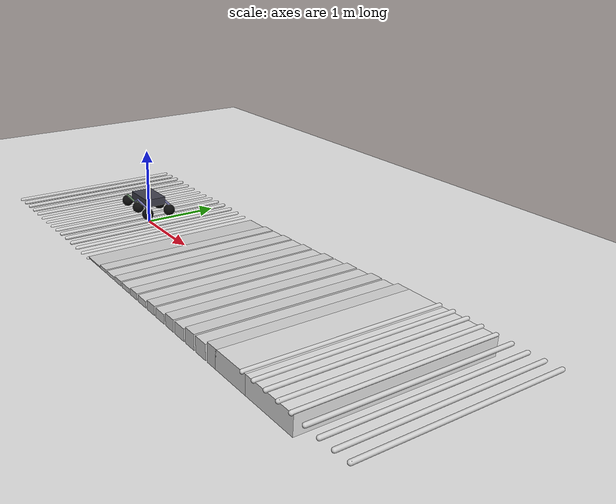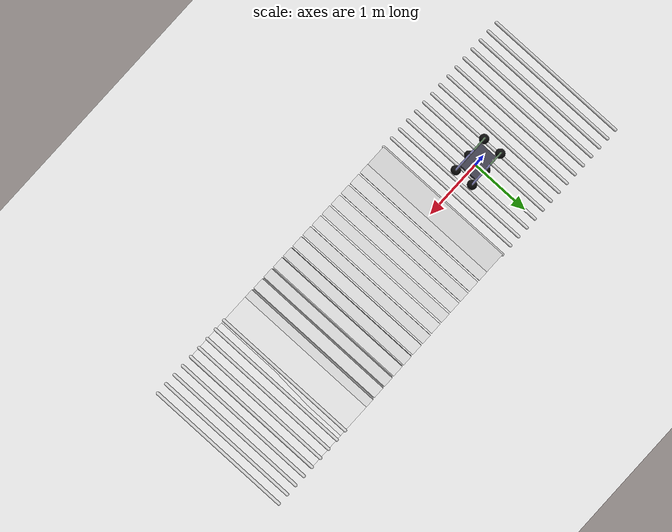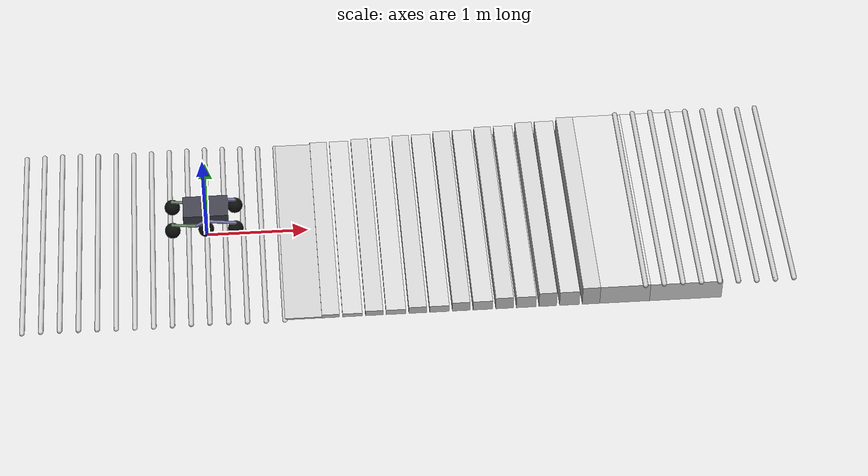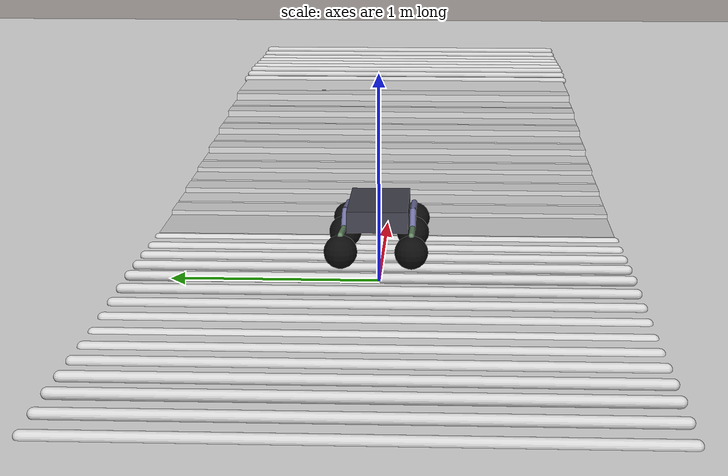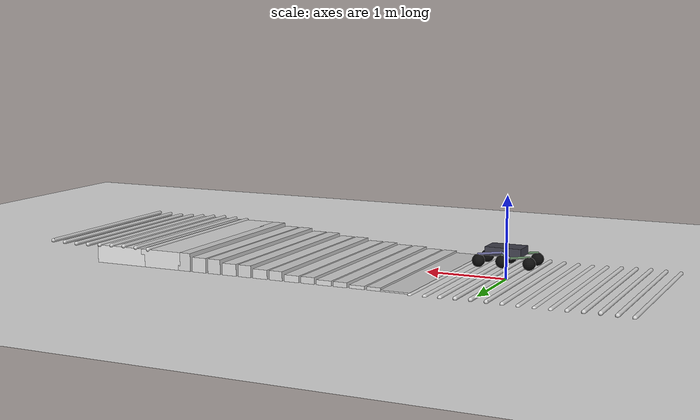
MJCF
<mujoco model="scene_stairs_logs">
  <compiler angle="degree" inertiafromgeom="true"/>
  <option timestep="0.002" gravity="0 0 -9.81"/>

  <default>
    <geom contype="1" conaffinity="1"/>
  </default>

  <include file="rover.xml"/>

  <worldbody>
    <geom name="floor" type="plane" size="45 45 0.1" pos="0 0 0"
          contype="1" conaffinity="1"
          friction="1.40 0.01 0.0001"
          rgba="0.88 0.88 0.88 1"/>

    <body name="sine_before" pos="0 0 0">
      <geom type="capsule" fromto="-1.80 -1.2  0.000  -1.80  1.2  0.000" size="0.025" rgba="0.82 0.82 0.82 1"
            contype="1" conaffinity="1" friction="0.6 0.005 0.0001"/>
      <geom type="capsule" fromto="-1.62 -1.2  0.007  -1.62  1.2  0.007" size="0.025" rgba="0.82 0.82 0.82 1"
            contype="1" conaffinity="1" friction="0.6 0.005 0.0001"/>
      <geom type="capsule" fromto="-1.44 -1.2  0.012  -1.44  1.2  0.012" size="0.025" rgba="0.82 0.82 0.82 1"
            contype="1" conaffinity="1" friction="0.6 0.005 0.0001"/>
      <geom type="capsule" fromto="-1.26 -1.2  0.007  -1.26  1.2  0.007" size="0.025" rgba="0.82 0.82 0.82 1"
            contype="1" conaffinity="1" friction="0.6 0.005 0.0001"/>
      <geom type="capsule" fromto="-1.08 -1.2  0.000  -1.08  1.2  0.000" size="0.025" rgba="0.82 0.82 0.82 1"
            contype="1" conaffinity="1" friction="0.6 0.005 0.0001"/>
      <geom type="capsule" fromto="-0.90 -1.2 -0.007  -0.90  1.2 -0.007" size="0.025" rgba="0.82 0.82 0.82 1"
            contype="1" conaffinity="1" friction="0.6 0.005 0.0001"/>
      <geom type="capsule" fromto="-0.72 -1.2 -0.012  -0.72  1.2 -0.012" size="0.025" rgba="0.82 0.82 0.82 1"
            contype="1" conaffinity="1" friction="0.6 0.005 0.0001"/>
      <geom type="capsule" fromto="-0.54 -1.2 -0.007  -0.54  1.2 -0.007" size="0.025" rgba="0.82 0.82 0.82 1"
            contype="1" conaffinity="1" friction="0.6 0.005 0.0001"/>
      <geom type="capsule" fromto="-0.36 -1.2  0.000  -0.36  1.2  0.000" size="0.025" rgba="0.82 0.82 0.82 1"
            contype="1" conaffinity="1" friction="0.6 0.005 0.0001"/>
      <geom type="capsule" fromto="-0.18 -1.2  0.007  -0.18  1.2  0.007" size="0.025" rgba="0.82 0.82 0.82 1"
            contype="1" conaffinity="1" friction="0.6 0.005 0.0001"/>
      <geom type="capsule" fromto=" 0.00 -1.2  0.012   0.00  1.2  0.012" size="0.025" rgba="0.82 0.82 0.82 1"
            contype="1" conaffinity="1" friction="0.6 0.005 0.0001"/>
      <geom type="capsule" fromto=" 0.18 -1.2  0.007   0.18  1.2  0.007" size="0.025" rgba="0.82 0.82 0.82 1"
            contype="1" conaffinity="1" friction="0.6 0.005 0.0001"/>
      <geom type="capsule" fromto=" 0.36 -1.2  0.000   0.36  1.2  0.000" size="0.025" rgba="0.82 0.82 0.82 1"
            contype="1" conaffinity="1" friction="0.6 0.005 0.0001"/>
      <geom type="capsule" fromto=" 0.54 -1.2 -0.007   0.54  1.2 -0.007" size="0.025" rgba="0.82 0.82 0.82 1"
            contype="1" conaffinity="1" friction="0.6 0.005 0.0001"/>
      <geom type="capsule" fromto=" 0.72 -1.2 -0.012   0.72  1.2 -0.012" size="0.025" rgba="0.82 0.82 0.82 1"
            contype="1" conaffinity="1" friction="0.6 0.005 0.0001"/>
    </body>

    <body name="stairs_hardest_x2" pos="0 0 0">
      <geom type="box" pos="0.90 0 0.008" size="0.18 1.2 0.008" rgba="0.80 0.80 0.80 1"
            contype="1" conaffinity="1" friction="0.9 0.01 0.0001"/>

      <geom type="box" pos="1.16 0 0.0200" size="0.085 1.2 0.0200" rgba="0.82 0.82 0.82 1"
            contype="1" conaffinity="1" friction="1.0 0.015 0.0001"/>
      <geom type="box" pos="1.37 0 0.0200" size="0.095 1.2 0.0200" rgba="0.84 0.84 0.84 1"
            contype="1" conaffinity="1" friction="1.0 0.015 0.0001"/>

      <geom type="box" pos="1.58 0 0.0300" size="0.085 1.2 0.0300" rgba="0.82 0.82 0.82 1"
            contype="1" conaffinity="1" friction="1.1 0.02 0.0001"/>
      <geom type="box" pos="1.79 0 0.0300" size="0.095 1.2 0.0300" rgba="0.84 0.84 0.84 1"
            contype="1" conaffinity="1" friction="1.1 0.02 0.0001"/>

      <geom type="box" pos="2.00 0 0.0400" size="0.085 1.2 0.0400" rgba="0.82 0.82 0.82 1"
            contype="1" conaffinity="1" friction="1.2 0.025 0.0001"/>
      <geom type="box" pos="2.21 0 0.0400" size="0.095 1.2 0.0400" rgba="0.84 0.84 0.84 1"
            contype="1" conaffinity="1" friction="1.2 0.025 0.0001"/>

      <geom type="box" pos="2.42 0 0.0560" size="0.085 1.2 0.0560" rgba="0.82 0.82 0.82 1"
            contype="1" conaffinity="1" friction="1.3 0.03 0.0001"/>
      <geom type="box" pos="2.63 0 0.0560" size="0.095 1.2 0.0560" rgba="0.84 0.84 0.84 1"
            contype="1" conaffinity="1" friction="1.3 0.03 0.0001"/>

      <geom type="box" pos="2.84 0 0.0720" size="0.085 1.2 0.0720" rgba="0.82 0.82 0.82 1"
            contype="1" conaffinity="1" friction="1.4 0.035 0.0001"/>
      <geom type="box" pos="3.05 0 0.0720" size="0.095 1.2 0.0720" rgba="0.84 0.84 0.84 1"
            contype="1" conaffinity="1" friction="1.4 0.035 0.0001"/>

      <geom type="box" pos="3.26 0 0.0896" size="0.085 1.2 0.0896" rgba="0.82 0.82 0.82 1"
            contype="1" conaffinity="1" friction="1.5 0.04 0.0001"/>
      <geom type="box" pos="3.47 0 0.0896" size="0.095 1.2 0.0896" rgba="0.84 0.84 0.84 1"
            contype="1" conaffinity="1" friction="1.5 0.04 0.0001"/>

      <geom type="box" pos="3.68 0 0.1104" size="0.085 1.2 0.1104" rgba="0.82 0.82 0.82 1"
            contype="1" conaffinity="1" friction="1.6 0.045 0.0001"/>

      <geom type="box" pos="4.02 0 0.1104" size="0.28 1.2 0.1104" rgba="0.86 0.86 0.86 1"
            contype="1" conaffinity="1" friction="1.4 0.035 0.0001"/>
      <geom type="box" pos="4.60 0 0.1104" size="0.35 1.2 0.1104" rgba="0.88 0.88 0.88 1"
            contype="1" conaffinity="1" friction="1.3 0.03 0.0001"/>
    </body>

    <body name="sine_on_top" pos="0 0 0">
      <geom type="capsule" fromto="4.20 -1.2 0.2208  4.20  1.2 0.2208" size="0.025" rgba="0.80 0.80 0.80 1"
            contype="1" conaffinity="1" friction="0.6 0.005 0.0001"/>
      <geom type="capsule" fromto="4.38 -1.2 0.2278  4.38  1.2 0.2278" size="0.025" rgba="0.80 0.80 0.80 1"
            contype="1" conaffinity="1" friction="0.6 0.005 0.0001"/>
      <geom type="capsule" fromto="4.56 -1.2 0.2328  4.56  1.2 0.2328" size="0.025" rgba="0.80 0.80 0.80 1"
            contype="1" conaffinity="1" friction="0.6 0.005 0.0001"/>
      <geom type="capsule" fromto="4.74 -1.2 0.2278  4.74  1.2 0.2278" size="0.025" rgba="0.80 0.80 0.80 1"
            contype="1" conaffinity="1" friction="0.6 0.005 0.0001"/>
      <geom type="capsule" fromto="4.92 -1.2 0.2208  4.92  1.2 0.2208" size="0.025" rgba="0.80 0.80 0.80 1"
            contype="1" conaffinity="1" friction="0.6 0.005 0.0001"/>
      <geom type="capsule" fromto="5.10 -1.2 0.2138  5.10  1.2 0.2138" size="0.025" rgba="0.80 0.80 0.80 1"
            contype="1" conaffinity="1" friction="0.6 0.005 0.0001"/>
      <geom type="capsule" fromto="5.28 -1.2 0.2088  5.28  1.2 0.2088" size="0.025" rgba="0.80 0.80 0.80 1"
            contype="1" conaffinity="1" friction="0.6 0.005 0.0001"/>
      <geom type="capsule" fromto="5.46 -1.2 0.2138  5.46  1.2 0.2138" size="0.025" rgba="0.80 0.80 0.80 1"
            contype="1" conaffinity="1" friction="0.6 0.005 0.0001"/>
      <geom type="capsule" fromto="5.64 -1.2 0.2208  5.64  1.2 0.2208" size="0.025" rgba="0.80 0.80 0.80 1"
            contype="1" conaffinity="1" friction="0.6 0.005 0.0001"/>
    </body>

    <light pos="0 0 3" dir="0 0 -1" diffuse="1 1 1"/>
    <camera name="main" pos="3.4 -3.4 2.0" xyaxes="0.7 0.7 0  -0.2 0.2 0.96"/>
  </worldbody>
</mujoco>

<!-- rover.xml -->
<mujoco model="rocker_bogie">
  <compiler angle="degree" inertiafromgeom="true" autolimits="true"/>
  <option timestep="0.002" gravity="0 0 -9.81" solver="Newton" iterations="120"/>

  <default>
    <geom condim="4" friction="1.3 0.01 0.0001" solref="0.004 1" solimp="0.95 0.99 0.001"
          contype="0" conaffinity="0"/>
    <joint damping="2" armature="0.02" limited="false"/>
  </default>

  <asset>
    <material name="mat_chassis" rgba="0.25 0.25 0.30 1"/>
    <material name="mat_rocker"  rgba="0.45 0.45 0.65 1"/>
    <material name="mat_bogie"   rgba="0.40 0.55 0.40 1"/>
    <material name="mat_wheel"   rgba="0.05 0.05 0.05 1"/>
    <material name="mat_skid"    rgba="0.20 0.20 0.20 0.6"/>
  </asset>

  <worldbody>
    <body name="chassis" pos="0 0 0.35">
      <joint name="slide_x" type="slide" axis="1 0 0" damping="1.0"/>
      <joint name="slide_y" type="slide" axis="0 1 0" damping="1.0"/>
      <joint name="slide_z" type="slide" axis="0 0 1" damping="2.0"/>

      <joint name="roll"  type="hinge" axis="1 0 0" damping="4.0" limited="true" range="-20 20"/>
      <joint name="pitch" type="hinge" axis="0 1 0" damping="4.0" limited="true" range="-20 20"/>
      <joint name="yaw"   type="hinge" axis="0 0 1" damping="1.0"/>

      <inertial pos="0 0 -0.03" mass="8.0" diaginertia="0.25 0.55 0.55"/>

      <!-- кузов визуальный, НЕ контактит -->
      <geom type="box" size="0.22 0.14 0.05" material="mat_chassis"
            contype="0" conaffinity="0"/>

      <!-- ========== LEFT ========== -->
      <body name="rocker_L" pos="0 0.16 0">
        <joint name="rocker_L_j" type="hinge" axis="0 1 0" damping="8" limited="true" range="-35 35"/>

        <geom type="capsule" fromto="0 0 0   0.288 0 -0.04" size="0.015" density="500"
              material="mat_rocker" contype="0" conaffinity="0"/>
        <geom type="capsule" fromto="0 0 0   -0.096 0 -0.06" size="0.015" density="500"
              material="mat_rocker" contype="0" conaffinity="0"/>

        <body name="wheel_front_L" pos="0.288 0 -0.116">
          <joint name="wheel_front_L_j" type="hinge" axis="0 1 0" damping="0.4" armature="0.01"/>
          <geom type="sphere" size="0.076" material="mat_wheel"
                contype="1" conaffinity="1"/>
        </body>

        <body name="bogie_L" pos="-0.096 0 -0.06">
          <joint name="bogie_L_j" type="hinge" axis="0 1 0" damping="10" limited="true" range="-70 70"/>

          <geom type="capsule" fromto="0 0 0   0.096 0 0.03" size="0.013" density="550"
                material="mat_bogie" contype="0" conaffinity="0"/>
          <geom type="capsule" fromto="0 0 0   -0.232 0 0.03" size="0.013" density="550"
                material="mat_bogie" contype="0" conaffinity="0"/>

          <body name="wheel_mid_L" pos="0.096 0 -0.046">
            <joint name="wheel_mid_L_j" type="hinge" axis="0 1 0" damping="0.4" armature="0.01"/>
            <geom type="sphere" size="0.076" material="mat_wheel"
                  contype="1" conaffinity="1"/>
          </body>

          <body name="wheel_rear_L" pos="-0.232 0 -0.046">
            <joint name="wheel_rear_L_j" type="hinge" axis="0 1 0" damping="0.4" armature="0.01"/>
            <geom type="sphere" size="0.076" material="mat_wheel"
                  contype="1" conaffinity="1"/>
          </body>
        </body>
      </body>

      <!-- ========== RIGHT ========== -->
      <body name="rocker_R" pos="0 -0.16 0">
        <joint name="rocker_R_j" type="hinge" axis="0 1 0" damping="8" limited="true" range="-35 35"/>

        <geom type="capsule" fromto="0 0 0   0.288 0 -0.04" size="0.015" density="500"
              material="mat_rocker" contype="0" conaffinity="0"/>
        <geom type="capsule" fromto="0 0 0   -0.096 0 -0.06" size="0.015" density="500"
              material="mat_rocker" contype="0" conaffinity="0"/>

        <body name="wheel_front_R" pos="0.288 0 -0.116">
          <joint name="wheel_front_R_j" type="hinge" axis="0 1 0" damping="0.4" armature="0.01"/>
          <geom type="sphere" size="0.076" material="mat_wheel"
                contype="1" conaffinity="1"/>
        </body>

        <body name="bogie_R" pos="-0.096 0 -0.06">
          <joint name="bogie_R_j" type="hinge" axis="0 1 0" damping="10" limited="true" range="-70 70"/>

          <geom type="capsule" fromto="0 0 0   0.096 0 0.03" size="0.013" density="550"
                material="mat_bogie" contype="0" conaffinity="0"/>
          <geom type="capsule" fromto="0 0 0   -0.232 0 0.03" size="0.013" density="550"
                material="mat_bogie" contype="0" conaffinity="0"/>

          <body name="wheel_mid_R" pos="0.096 0 -0.046">
            <joint name="wheel_mid_R_j" type="hinge" axis="0 1 0" damping="0.4" armature="0.01"/>
            <geom type="sphere" size="0.076" material="mat_wheel"
                  contype="1" conaffinity="1"/>
          </body>

          <body name="wheel_rear_R" pos="-0.232 0 -0.046">
            <joint name="wheel_rear_R_j" type="hinge" axis="0 1 0" damping="0.4" armature="0.01"/>
            <geom type="sphere" size="0.076" material="mat_wheel"
                  contype="1" conaffinity="1"/>
          </body>
        </body>
      </body>

    </body>
  </worldbody>

  <actuator>
    <position name="diff_pitch" joint="pitch" kp="900" kv="80" forcerange="-250 250"/>
    <position name="diff_roll"  joint="roll"  kp="900" kv="80" forcerange="-250 250"/>

    <motor joint="wheel_front_L_j" gear="40"/>
    <motor joint="wheel_mid_L_j"   gear="40"/>
    <motor joint="wheel_rear_L_j"  gear="40"/>
    <motor joint="wheel_front_R_j" gear="40"/>
    <motor joint="wheel_mid_R_j"   gear="40"/>
    <motor joint="wheel_rear_R_j"  gear="40"/>
  </actuator>
</mujoco>
